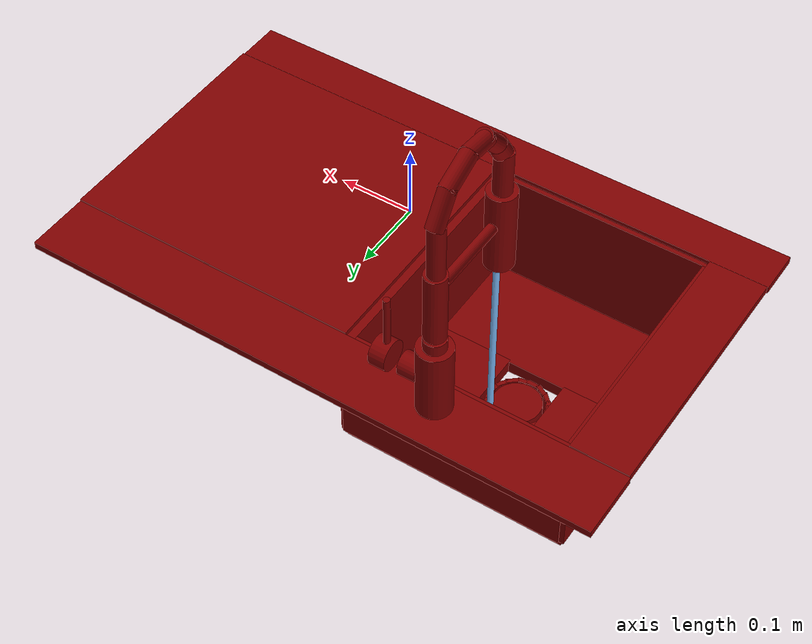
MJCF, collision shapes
<mujoco model="model">
  <compiler angle="radian"/>
  <asset>
    <mesh file="visuals/handle.obj" name="handle_vis"/>
    <mesh file="visuals/Body001.obj" name="Body001_vis"/>
    <mesh file="visuals/Funnel001.obj" name="Funnel001_vis"/>
    <mesh file="visuals/spout.obj" name="spout_vis"/>
    <texture file="visuals/T_BC001.png" name="Body001_material" type="2d"/>
    <material name="Body001_material" rgba="1 1 1 1.0" texture="Body001_material" shininess="0.4472135901451111" specular="1"/>
    <texture file="visuals/T_BC001.png" name="handle_material" type="2d"/>
    <material name="handle_material" rgba="1 1 1 1.0" texture="handle_material" shininess="0.4472135901451111" specular="1"/>
    <texture file="visuals/T_BC001.png" name="Funnel001_material" type="2d"/>
    <material name="Funnel001_material" rgba="1 1 1 1.0" texture="Funnel001_material" shininess="0.4472135901451111" specular="0.3103448502657381"/>
    <texture file="visuals/T_BC001.png" name="spout_material" type="2d"/>
    <material name="spout_material" rgba="1 1 1 1.0" texture="spout_material" shininess="0.4472135901451111" specular="1"/>
  </asset>
  <default>
    <default class="visual">
      <geom conaffinity="0" contype="0" group="1" type="mesh"/>
    </default>
    <default class="collision">
      <geom group="0" rgba="0.5 0 0 0.5"/>
    </default>
    <default class="spawn">
      <geom group="0" rgba="1 1 1 0.5" contype="0" conaffinity="0"/>
      <site group="0" rgba="1 1 1 0.5"/>
    </default>
    <default class="region">
      <geom group="1" conaffinity="0" contype="0" rgba="0 1 0 0"/>
    </default>
  </default>
  <worldbody>
    <body>
      <body name="object">
        <geom mesh="Body001_vis" type="mesh" solimp="0.998 0.998 0.001" solref="0.001 1" density="100" friction="0.95 0.3 0.1" class="visual" material="Body001_material"/>
        <geom class="collision" type="box" pos="-0.207475 -0.013143 -0.275760" size="0.0030757812783122063 0.00853711273521185 0.019730962812900543" quat="0.16950276494026184 -3.091321385783046e-16 -1.7973683386898406e-15 -0.9855297207832336"/>
        <geom class="collision" type="box" pos="-0.198331 -0.024703 -0.275760" size="0.0030757810454815626 0.00853711273521185 0.019730962812900543" quat="0.39220166206359863 -7.152801486824461e-16 -1.6776381140130772e-15 -0.9198792576789856"/>
        <geom class="collision" type="box" pos="-0.186434 -0.031902 -0.275760" size="0.00307578151114285 0.00853711273521185 0.019730962812900543" quat="0.5035309791564941 -9.183187106996302e-16 -1.5756856285915237e-15 -0.8639771938323975"/>
        <geom class="collision" type="box" pos="-0.171728 -0.034639 -0.275760" size="0.0030757817439734936 0.00853711273521185 0.019730962812900543" quat="0.7007964849472046 -1.2780832495516855e-15 -1.300998561269348e-15 -0.7133612632751465"/>
        <geom class="collision" type="box" pos="-0.158272 -0.032288 -0.275760" size="0.0030757817439734936 0.008537111803889275 0.019730962812900543" quat="0.7737264633178711 -1.411090186281068e-15 -1.1553868213727558e-15 -0.6335198283195496"/>
        <geom class="collision" type="box" pos="-0.145534 -0.024872 -0.275760" size="0.0030757817439734936 0.008537116460502148 0.019730962812900543" quat="0.8989648222923279 -1.6394953733652688e-15 -7.988432841213127e-16 -0.4380207657814026"/>
        <geom class="collision" type="box" pos="-0.136724 -0.014114 -0.275760" size="0.0030757817439734936 0.00853711273521185 0.019730962812900543" quat="0.946450412273407 -1.7260967630463773e-15 -5.88798859657829e-16 -0.3228491544723511"/>
        <geom class="collision" type="box" pos="-0.132551 -0.003311 -0.275760" size="0.00307578151114285 0.0085371108725667 0.019730962812900543" quat="0.9925193786621094 -1.810115972787781e-15 -2.2265703621567577e-16 -0.12208721786737442"/>
        <geom class="collision" type="box" pos="-0.131813 0.010329 -0.275760" size="0.00307578151114285 0.00853711273521185 0.019730962812900543" quat="0.99989914894104 -1.823574267528468e-15 -2.5902970630557174e-17 -0.01420315820723772"/>
        <geom class="collision" type="box" pos="-0.136172 0.024410 -0.275760" size="0.0030757817439734936 0.008537111803889275 0.019730962812900543" quat="0.9762247800827026 -1.7803982453498375e-15 3.9531911738996894e-16 0.21676069498062134"/>
        <geom class="collision" type="box" pos="-0.144671 0.035416 -0.275760" size="0.0030757812783122063 0.00853711273521185 0.019730962812900543" quat="0.9416987299919128 -1.717430874842137e-15 6.13616660314584e-16 0.3364573121070862"/>
        <geom class="collision" type="box" pos="-0.151764 0.040594 -0.275760" size="0.0030757812783122063 0.008537111803889275 0.019730962812900543" quat="0.8705456852912903 -1.5876659567183701e-15 8.97449301186942e-16 0.49208757281303406"/>
        <geom class="collision" type="box" pos="-0.164591 0.045292 -0.275760" size="0.003075780812650919 0.008537111803889275 0.019730962812900543" quat="0.8123213648796082 -1.48147798892319e-15 1.0636344125811571e-15 0.5832101106643677"/>
        <geom class="collision" type="box" pos="-0.179330 0.045245 -0.275760" size="0.0030757817439734936 0.008537111803889275 0.019730962812900543" quat="0.655936598777771 -1.1962705606378791e-15 1.3766017575259516e-15 0.7548159956932068"/>
        <geom class="collision" type="box" pos="-0.192342 0.040340 -0.275760" size="0.00307578151114285 0.008537113666534424 0.019730962812900543" quat="0.5569969415664673 -1.0158284024337164e-15 1.5146577517747986e-15 0.8305145502090454"/>
        <geom class="collision" type="box" pos="-0.200705 0.033764 -0.275760" size="0.0030757810454815626 0.00853711273521185 0.019730962812900543" quat="0.3859434425830841 -7.038672796907009e-16 1.6824580491203093e-15 0.9225224256515503"/>
        <geom class="collision" type="box" pos="-0.208437 0.022503 -0.275760" size="0.0030757810454815626 0.008537120185792446 0.019730962812900543" quat="0.2840755879878998 -5.180860081221983e-16 1.7486238160368422e-15 0.9588018655776978"/>
        <geom class="collision" type="box" pos="-0.212047 0.008213 -0.275760" size="0.0030757810454815626 0.008537111803889275 0.019730962812900543" quat="0.05531521886587143 -1.0087707121589568e-16 1.820977476270423e-15 0.9984689354896545"/>
        <geom class="collision" type="box" pos="-0.210522 -0.005609 -0.275760" size="0.0030757812783122063 0.008537122048437595 0.019730981439352036" quat="0.0692598968744278 -1.2631098246265976e-16 -1.8193787015824804e-15 -0.9975986480712891"/>
        <geom class="collision" type="box" pos="-0.171835 0.107925 -0.251985" size="0.15964625775814056 0.0576305165886879 0.009369050152599812" quat="7.907536314633035e-07 1.0 0.0 0.0"/>
        <geom class="collision" type="box" pos="-0.171835 0.107925 -0.251985" size="0.15964625775814056 0.0576305165886879 0.009369050152599812" quat="7.907536314633035e-07 1.0 0.0 0.0"/>
        <geom class="collision" type="box" pos="-0.171835 -0.119440 -0.254039" size="0.15964625775814056 0.07829343527555466 0.009369050152599812" quat="7.907536314633035e-07 1.0 0.0 0.0"/>
        <geom class="collision" type="box" pos="-0.075273 0.005200 -0.254039" size="0.054623693227767944 0.05063999816775322 0.009369050152599812" quat="7.907536314633035e-07 1.0 0.0 0.0"/>
        <geom class="collision" type="box" pos="-0.270451 0.006570 -0.254039" size="0.05755132436752319 0.050639986991882324 0.009369050152599812" quat="7.907536314633035e-07 1.0 0.0 0.0"/>
        <geom class="collision" type="box" pos="-0.001078 -0.223579 -0.073243" size="0.409746915102005 0.03142094239592552 0.005339390132576227" quat="1.0 -1.8237584971944956e-15 0.0 0.0"/>
        <geom class="collision" type="box" pos="-0.001078 0.209544 -0.073243" size="0.409746915102005 0.045455724000930786 0.005339390132576227" quat="1.0 -1.8237584971944956e-15 0.0 0.0"/>
        <geom class="collision" type="box" pos="-0.368878 -0.014828 -0.073243" size="0.04033420979976654 0.17720980942249298 0.005339390132576227" quat="1.0 -1.8237584971944956e-15 0.0 0.0"/>
        <geom class="collision" type="box" pos="0.199153 -0.014828 -0.073243" size="0.21167214214801788 0.17720980942249298 0.005339390132576227" quat="1.0 -1.8237584971944956e-15 0.0 0.0"/>
        <geom class="collision" type="box" pos="-0.171835 -0.193562 -0.159532" size="0.15964625775814056 0.008025120943784714 0.08541199564933777" quat="7.907536314633035e-07 1.0 0.0 0.0"/>
        <geom class="collision" type="box" pos="-0.016021 -0.011121 -0.159532" size="0.18363431096076965 0.008025120943784714 0.08541200309991837" quat="5.591473382082768e-07 0.70710688829422 0.7071066498756409 5.591471676780202e-07"/>
        <geom class="collision" type="box" pos="-0.330588 -0.011121 -0.159532" size="0.18363431096076965 0.008025120943784714 0.08541200309991837" quat="5.591473382082768e-07 0.70710688829422 0.7071066498756409 5.591471676780202e-07"/>
        <geom class="collision" type="box" pos="-0.171835 0.164875 -0.159532" size="0.15964625775814056 0.010186223313212395 0.08541200309991837" quat="7.907536314633035e-07 1.0 0.0 0.0"/>
        <geom class="collision" type="cylinder" pos="-0.164307 0.197497 -0.018237" size="0.023443039506673813 0.05424214154481888" quat="1.0 -1.8237584971944956e-15 0.0 0.0"/>
        <geom class="collision" type="cylinder" pos="-0.164307 0.197497 0.042796" size="0.015013178810477257 0.009217644110321999" quat="1.0 -1.8237584971944956e-15 0.0 0.0"/>
        <geom class="collision" type="cylinder" pos="-0.134428 0.198322 -0.016321" size="0.016226431354880333 0.01253475435078144" quat="0.7051935791969299 -5.86776243913234e-12 0.7090148329734802 9.523706978598057e-08"/>
        <body name="handle">
          <joint axis="1.0 0.0 0.0" pos="-0.098310 0.198322 -0.015557" limited="true" name="handle_joint_hinge_0" type="hinge" range="-0.7853981633974483 0.7853981633974483" damping="1" frictionloss="1" armature=".01" stiffness="0.05"/>
          <joint axis="0.0 1.0 0.0" pos="-0.098310 0.198322 -0.015557" limited="true" name="handle_joint_hinge_1" type="hinge" range="0.0 0.08726646259971647" damping="1" frictionloss="1" armature=".01" stiffness="0.05"/>
          <geom mesh="handle_vis" type="mesh" solimp="0.998 0.998 0.001" solref="0.001 1" density="100" friction="0.95 0.3 0.1" class="visual" material="handle_material"/>
          <geom class="collision" type="cylinder" pos="-0.095744 0.198322 -0.015557" size="0.020625337958335876 0.011458544060587883" quat="0.7051935791969299 -5.86776243913234e-12 0.7090148329734802 9.523706978598057e-08"/>
          <geom class="collision" type="cylinder" pos="-0.098369 0.198322 0.039267" size="0.0045075248926877975 0.03761698305606842" quat="0.9999913573265076 1.3009860929443645e-13 -0.004157534800469875 -5.585981122102623e-10"/>
        </body>
        <body name="Funnel001">
          <joint axis="0.0 0.0 1.0" pos="-0.171777 0.004652 -0.274305" limited="true" name="Funnel001_joint" range="0.0 0.05" type="slide" damping="1" frictionloss="1" armature=".01" stiffness="0.05"/>
          <geom mesh="Funnel001_vis" type="mesh" solimp="0.998 0.998 0.001" solref="0.001 1" density="100" friction="0.95 0.3 0.1" class="visual" material="Funnel001_material"/>
          <geom class="collision" type="cylinder" pos="-0.171835 0.005655 -0.273853" size="0.033521901816129684 0.020131705328822136" quat="7.907536314633035e-07 1.4421436566754754e-21 1.8237584971944956e-15 1.0"/>
        </body>
        <body name="spout">
          <joint axis="0.0 0.0 1.0" pos="-0.163851 0.197565 0.168006" limited="true" name="spout_joint" range="-0.7853981633974483 0.7853981633974483" type="hinge" damping="1" frictionloss="1" armature=".01" stiffness="0.05"/>
          <site type="cylinder" rgba="0.5 0.75 1 1" size="0.004266842734068632 0.1593114584684372" pos="-0.161757 0.059479 -0.100960" name="water"/>
          <geom mesh="spout_vis" type="mesh" solimp="0.998 0.998 0.001" solref="0.001 1" density="100" friction="0.95 0.3 0.1" class="visual" material="spout_material"/>
          <geom class="collision" type="cylinder" pos="-0.164032 0.197772 0.106339" size="0.014699677005410194 0.050279878079891205" quat="1.0 -1.8237584971944956e-15 0.0 0.0"/>
          <geom class="collision" type="cylinder" pos="-0.164307 0.197496 0.193529" size="0.01120044570416212 0.03831084072589874" quat="1.0 -1.8237584971944956e-15 0.0 0.0"/>
          <geom class="collision" type="cylinder" pos="-0.164307 0.188460 0.251074" size="0.01120044570416212 0.02547653578221798" quat="0.9593374729156494 0.28226161003112793 -6.267466768486506e-17 -1.38730607210171e-25"/>
          <geom class="collision" type="cylinder" pos="-0.164307 0.156535 0.279147" size="0.01120044570416212 0.025476541370153427" quat="0.8404239416122437 0.5419295430183411 -1.203325312767103e-16 -2.5543239197118103e-24"/>
          <geom class="collision" type="cylinder" pos="-0.163783 0.118059 0.285587" size="0.01120044570416212 0.02174557000398636" quat="0.65557461977005 0.755130410194397 -1.676726203636019e-16 -4.94466140659854e-24"/>
          <geom class="collision" type="cylinder" pos="-0.162380 0.066538 0.243368" size="0.012502557598054409 0.01421136874705553" quat="0.26908019185066223 0.963117778301239 -2.138551065791725e-16 -4.641503738443915e-25"/>
          <geom class="collision" type="cylinder" pos="-0.164307 0.059415 0.202085" size="0.012454117648303509 0.03192519024014473" quat="0.0002859393716789782 -0.9999999403953552 2.2204529313930095e-16 -2.368696610453538e-22"/>
          <geom class="collision" type="cylinder" pos="-0.164307 0.060208 0.202085" size="0.011054271832108498 0.03192519024014473" quat="0.0002859393716789782 -0.9999999403953552 2.2204529313930095e-16 -2.368696610453538e-22"/>
          <geom class="collision" type="cylinder" pos="-0.164032 0.059457 0.115454" size="0.01948469690978527 0.057862669229507446" quat="1.0 -1.8237584971944956e-15 0.0 0.0"/>
          <geom class="collision" type="cylinder" pos="-0.164032 0.131935 0.128010" size="0.007005923893302679 0.05968574434518814" quat="0.7071068286895752 0.7071067690849304 -1.5776961407011706e-16 -7.678365040593655e-19"/>
          <geom class="collision" type="cylinder" pos="-0.163213 0.086519 0.269239" size="0.01120044570416212 0.02547653578221798" quat="0.3535419702529907 0.9354186654090881 -2.0770468123515083e-16 1.2017664013457033e-23"/>
        </body>
        <geom class="region" name="reg_main" type="box" pos="0.0008809999999999929 -0.00016650000000001386 -0.1814695" size="0.40277799999999997 0.2517375 0.11326150000000001"/>
        <geom class="region" name="reg_basin" type="box" pos="-0.17601250000000002 -0.018657500000000007 -0.16442299999999999" size="0.1489315 0.1695445 0.084473"/>
      </body>
    </body>
  </worldbody>
  <actuator>
    <motor name="handle_joint_hinge_0_actuator" joint="handle_joint_hinge_0" gear="10"/>
    <motor name="handle_joint_hinge_1_actuator" joint="handle_joint_hinge_1" gear="10"/>
    <motor name="Funnel001_joint_actuator" joint="Funnel001_joint" gear="10"/>
    <motor name="spout_joint_actuator" joint="spout_joint" gear="10"/>
  </actuator>
</mujoco>
